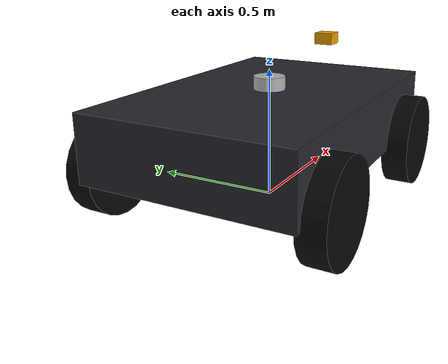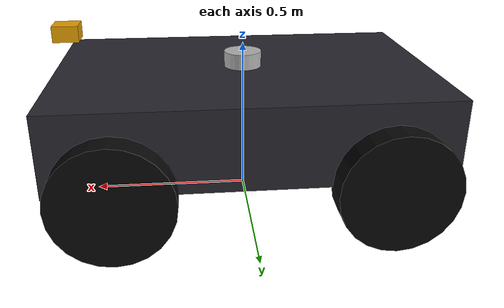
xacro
<?xml version="1.0"?>

<robot xmlns:xacro="http://www.ros.org/wiki/xacro"
       name="disaster_ugv">

  <!-- Robot dimensions -->

  <xacro:property name="chassis_length" value="1.20"/>
  <xacro:property name="chassis_width"  value="0.80"/>
  <xacro:property name="chassis_height" value="0.25"/>

  <xacro:property name="wheel_radius" value="0.18"/>
  <xacro:property name="wheel_width"  value="0.10"/>

  <xacro:property name="front_x" value="0.40"/>
  <xacro:property name="rear_x"  value="-0.40"/>

  <xacro:property name="wheel_y" value="0.43"/>

  <!-- Main chassis -->

  <link name="base_link">

    <visual>
      <origin xyz="0 0 0.30" rpy="0 0 0"/>

      <geometry>
        <box size="${chassis_length} ${chassis_width} ${chassis_height}"/>
      </geometry>

      <material name="chassis_material">
        <color rgba="0.15 0.15 0.18 1.0"/>
      </material>
    </visual>

    <collision>
      <origin xyz="0 0 0.30" rpy="0 0 0"/>

      <geometry>
        <box size="${chassis_length} ${chassis_width} ${chassis_height}"/>
      </geometry>
    </collision>

    <inertial>
      <origin xyz="0 0 0.30" rpy="0 0 0"/>

      <mass value="20.0"/>

      <inertia
        ixx="2.0"
        ixy="0.0"
        ixz="0.0"
        iyy="4.0"
        iyz="0.0"
        izz="4.5"/>
    </inertial>

  </link>

  <!-- FRONT LEFT STEERING -->

  <link name="front_left_steering_link">

    <inertial>
      <mass value="0.5"/>

      <inertia
        ixx="0.001"
        ixy="0.0"
        ixz="0.0"
        iyy="0.001"
        iyz="0.0"
        izz="0.001"/>
    </inertial>

  </link>

  <joint name="front_left_steering_joint"
         type="revolute">

    <parent link="base_link"/>
    <child link="front_left_steering_link"/>

    <origin
      xyz="${front_x} ${wheel_y} ${wheel_radius}"
      rpy="0 0 0"/>

    <axis xyz="0 0 1"/>

    <limit
      lower="-0.60"
      upper="0.60"
      effort="50"
      velocity="2.0"/>

  </joint>

  <!-- FRONT LEFT WHEEL -->

  <link name="front_left_wheel">

    <visual>
      <origin xyz="0 0 0" rpy="1.5708 0 0"/>

      <geometry>
        <cylinder
          radius="${wheel_radius}"
          length="${wheel_width}"/>
      </geometry>

      <material name="wheel_material">
        <color rgba="0.03 0.03 0.03 1.0"/>
      </material>
    </visual>

    <collision>
      <origin xyz="0 0 0" rpy="1.5708 0 0"/>

      <geometry>
        <cylinder
          radius="${wheel_radius}"
          length="${wheel_width}"/>
      </geometry>
    </collision>

    <inertial>
      <mass value="2.0"/>

      <inertia
        ixx="0.03"
        ixy="0.0"
        ixz="0.0"
        iyy="0.03"
        iyz="0.0"
        izz="0.06"/>
    </inertial>

  </link>

  <joint name="front_left_wheel_joint"
         type="continuous">

    <parent link="front_left_steering_link"/>
    <child link="front_left_wheel"/>

    <origin xyz="0 0 0" rpy="0 0 0"/>

    <axis xyz="0 1 0"/>

  </joint>

  <!-- FRONT RIGHT STEERING -->

  <link name="front_right_steering_link">

    <inertial>
      <mass value="0.5"/>

      <inertia
        ixx="0.001"
        ixy="0.0"
        ixz="0.0"
        iyy="0.001"
        iyz="0.0"
        izz="0.001"/>
    </inertial>

  </link>

  <joint name="front_right_steering_joint"
         type="revolute">

    <parent link="base_link"/>
    <child link="front_right_steering_link"/>

    <origin
      xyz="${front_x} -${wheel_y} ${wheel_radius}"
      rpy="0 0 0"/>

    <axis xyz="0 0 1"/>

    <limit
      lower="-0.60"
      upper="0.60"
      effort="50"
      velocity="2.0"/>

  </joint>

  <!-- FRONT RIGHT WHEEL -->

  <link name="front_right_wheel">

    <visual>
      <origin xyz="0 0 0" rpy="1.5708 0 0"/>

      <geometry>
        <cylinder
          radius="${wheel_radius}"
          length="${wheel_width}"/>
      </geometry>

      <material name="wheel_material">
        <color rgba="0.03 0.03 0.03 1.0"/>
      </material>
    </visual>

    <collision>
      <origin xyz="0 0 0" rpy="1.5708 0 0"/>

      <geometry>
        <cylinder
          radius="${wheel_radius}"
          length="${wheel_width}"/>
      </geometry>
    </collision>

    <inertial>
      <mass value="2.0"/>

      <inertia
        ixx="0.03"
        ixy="0.0"
        ixz="0.0"
        iyy="0.03"
        iyz="0.0"
        izz="0.06"/>
    </inertial>

  </link>

  <joint name="front_right_wheel_joint"
         type="continuous">

    <parent link="front_right_steering_link"/>
    <child link="front_right_wheel"/>

    <origin xyz="0 0 0" rpy="0 0 0"/>

    <axis xyz="0 1 0"/>

  </joint>

  <!-- REAR LEFT WHEEL -->

  <link name="rear_left_wheel">

    <visual>
      <origin xyz="0 0 0" rpy="1.5708 0 0"/>

      <geometry>
        <cylinder
          radius="${wheel_radius}"
          length="${wheel_width}"/>
      </geometry>

      <material name="wheel_material">
        <color rgba="0.03 0.03 0.03 1.0"/>
      </material>
    </visual>

    <collision>
      <origin xyz="0 0 0" rpy="1.5708 0 0"/>

      <geometry>
        <cylinder
          radius="${wheel_radius}"
          length="${wheel_width}"/>
      </geometry>
    </collision>

    <inertial>
      <mass value="2.0"/>

      <inertia
        ixx="0.03"
        ixy="0.0"
        ixz="0.0"
        iyy="0.03"
        iyz="0.0"
        izz="0.06"/>
    </inertial>

  </link>

  <joint name="rear_left_wheel_joint"
         type="continuous">

    <parent link="base_link"/>
    <child link="rear_left_wheel"/>

    <origin
      xyz="${rear_x} ${wheel_y} ${wheel_radius}"
      rpy="0 0 0"/>

    <axis xyz="0 1 0"/>

  </joint>

  <!-- REAR RIGHT WHEEL -->

  <link name="rear_right_wheel">

    <visual>
      <origin xyz="0 0 0" rpy="1.5708 0 0"/>

      <geometry>
        <cylinder
          radius="${wheel_radius}"
          length="${wheel_width}"/>
      </geometry>

      <material name="wheel_material">
        <color rgba="0.03 0.03 0.03 1.0"/>
      </material>
    </visual>

    <collision>
      <origin xyz="0 0 0" rpy="1.5708 0 0"/>

      <geometry>
        <cylinder
          radius="${wheel_radius}"
          length="${wheel_width}"/>
      </geometry>
    </collision>

    <inertial>
      <mass value="2.0"/>

      <inertia
        ixx="0.03"
        ixy="0.0"
        ixz="0.0"
        iyy="0.03"
        iyz="0.0"
        izz="0.06"/>
    </inertial>

  </link>

  <joint name="rear_right_wheel_joint"
         type="continuous">

    <parent link="base_link"/>
    <child link="rear_right_wheel"/>

    <origin
      xyz="${rear_x} -${wheel_y} ${wheel_radius}"
      rpy="0 0 0"/>

    <axis xyz="0 1 0"/>

  </joint>
  <ros2_control name="GazeboSystem" type="system">

    <hardware>
      <plugin>gz_ros2_control/GazeboSimSystem</plugin>
    </hardware>

    <joint name="front_left_steering_joint">
      <command_interface name="position"/>
      <state_interface name="position"/>
    </joint>

    <joint name="front_right_steering_joint">
      <command_interface name="position"/>
      <state_interface name="position"/>
    </joint>

    <joint name="rear_left_wheel_joint">
      <command_interface name="velocity"/>
      <state_interface name="velocity"/>
    </joint>

    <joint name="rear_right_wheel_joint">
      <command_interface name="velocity"/>
      <state_interface name="velocity"/>
    </joint>
  </ros2_control>
  <gazebo>
    <plugin
      filename="libgz_ros2_control-system.so"
      name="gz_ros2_control::GazeboSimROS2ControlPlugin">
	<ros>
  	<namespace>/robot2</namespace>
	</ros>

	<parameters>
  	  $(find disaster_robot_description)/config/ackermann_controllers_robot2.yaml
	</parameters>
    </plugin>
  </gazebo>
  <!-- LiDAR -->
  <link name="lidar_link">
    <inertial>
      <mass value="0.5"/>
      <origin xyz="0 0 0"/>
      <inertia ixx="0.001" ixy="0" ixz="0"
               iyy="0.001" iyz="0"
               izz="0.001"/>
    </inertial>

    <visual>
      <origin xyz="0 0 0"/>
      <geometry>
        <cylinder radius="0.06" length="0.05"/>
      </geometry>
    </visual>

    <collision>
      <origin xyz="0 0 0"/>
      <geometry>
        <cylinder radius="0.06" length="0.05"/>
      </geometry>
    </collision>
  </link>

  <joint name="lidar_joint" type="fixed">
    <parent link="base_link"/>
    <child link="lidar_link"/>
    <origin xyz="0 0 0.45" rpy="0 0 0"/>
  </joint>
  <gazebo reference="lidar_link">
    <sensor name="lidar" type="gpu_lidar">
      <always_on>true</always_on>
      <update_rate>10</update_rate>
      <visualize>true</visualize>

      <topic>/robot2/lidar</topic>

      <lidar>
        <scan>
          <horizontal>
            <samples>360</samples>
            <resolution>1</resolution>
            <min_angle>-3.14159</min_angle>
            <max_angle>3.14159</max_angle>
          </horizontal>
        </scan>

        <range>
          <min>0.12</min>
          <max>12.0</max>
          <resolution>0.01</resolution>
        </range>
      </lidar>

    </sensor>
  </gazebo>

  <!-- RGB Camera -->
  <link name="camera_link">
    <inertial>
      <mass value="0.2"/>
      <origin xyz="0 0 0"/>
      <inertia ixx="0.0005" ixy="0" ixz="0"
               iyy="0.0005" iyz="0"
               izz="0.0005"/>
    </inertial>

    <visual>
      <origin xyz="0 0 0"/>
      <geometry>
        <box size="0.08 0.08 0.05"/>
      </geometry>
    </visual>

    <collision>
      <origin xyz="0 0 0"/>
      <geometry>
        <box size="0.08 0.08 0.05"/>
      </geometry>
    </collision>
  </link>

  <joint name="camera_joint" type="fixed">
    <parent link="base_link"/>
    <child link="camera_link"/>
    <origin xyz="0.55 0 0.55" rpy="0 0 0"/>
  </joint>

  <gazebo reference="camera_link">
    <sensor name="camera" type="camera">
      <camera>
        <horizontal_fov>1.047</horizontal_fov>
        <image>
          <width>640</width>
          <height>480</height>
        </image>
        <clip>
          <near>0.1</near>
          <far>100</far>
        </clip>
      </camera>

      <always_on>true</always_on>
      <update_rate>30</update_rate>
      <visualize>true</visualize>
      <topic>/robot2/camera</topic>
    </sensor>
  </gazebo>

  <!-- IMU -->
  <link name="imu_link">

    <visual>
      <origin xyz="0 0 0"/>
      <geometry>
        <box size="0.06 0.04 0.02"/>
      </geometry>
    </visual>

    <collision>
      <origin xyz="0 0 0"/>
      <geometry>
        <box size="0.06 0.04 0.02"/>
      </geometry>
    </collision>

    <inertial>
      <mass value="0.05"/>
      <inertia
        ixx="0.00001"
        ixy="0.0"
        ixz="0.0"
        iyy="0.00001"
        iyz="0.0"
        izz="0.00001"/>
    </inertial>

  </link>

  <joint name="imu_joint" type="fixed">
    <parent link="base_link"/>
    <child link="imu_link"/>
    <origin xyz="0 0 0.25" rpy="0 0 0"/>
  </joint>

  <gazebo reference="imu_link">
<sensor name="imu_sensor" type="imu">
  <always_on>1</always_on>
  <update_rate>100</update_rate>
  <visualize>true</visualize>
  <topic>/robot2/imu</topic>
  <enable_metrics>true</enable_metrics>
</sensor>
  </gazebo>

</robot>
